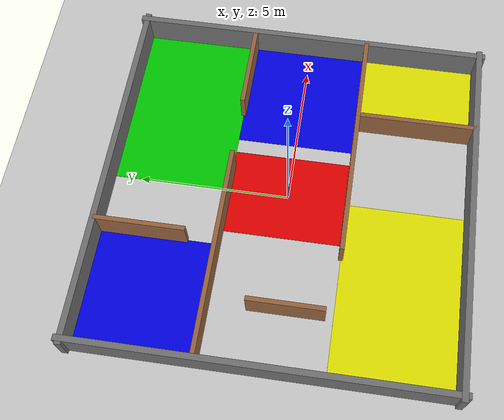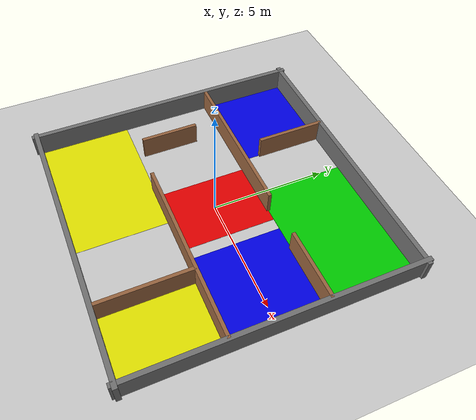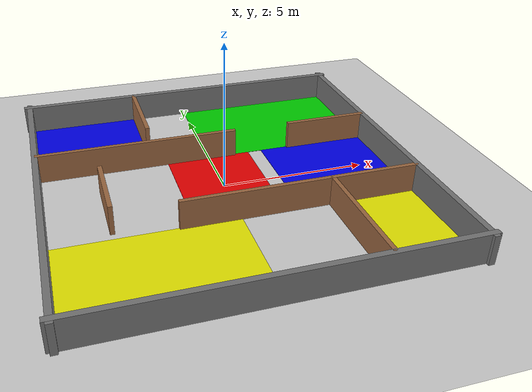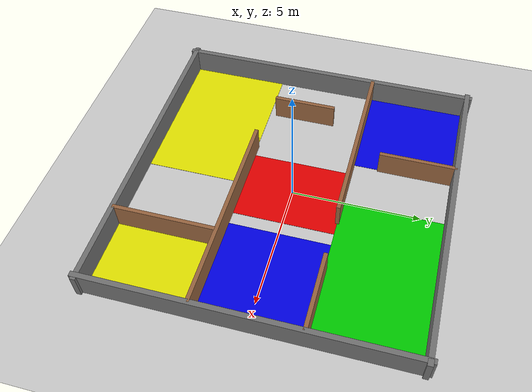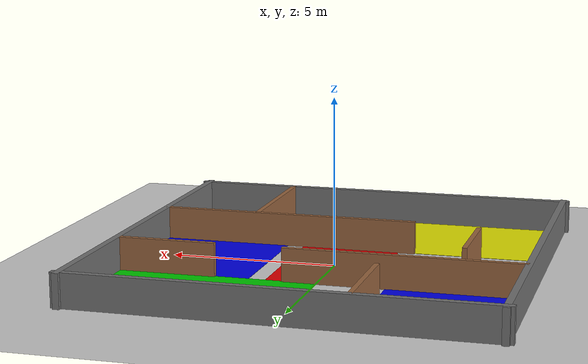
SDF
<?xml version="1.0"?>
<sdf version="1.8">
  <world name="default">
    <physics type="ode">
      <real_time_update_rate>1000.0</real_time_update_rate>
      <max_step_size>0.001</max_step_size>
      <real_time_factor>1</real_time_factor>
      <ode>
        <solver>
          <type>quick</type>
          <iters>150</iters>
          <precon_iters>0</precon_iters>
          <sor>1.4</sor>
          <use_dynamic_moi_rescaling>1</use_dynamic_moi_rescaling>
        </solver>
        <constraints>
          <cfm>0.00001</cfm>
          <erp>0.2</erp>
          <contact_max_correcting_vel>2000.0</contact_max_correcting_vel>
          <contact_surface_layer>0.01</contact_surface_layer>
        </constraints>
      </ode>
    </physics>
    <plugin filename="gz-sim-physics-system" name="gz::sim::systems::Physics"/>
    <plugin filename="gz-sim-user-commands-system" name="gz::sim::systems::UserCommands"/>
    <plugin filename="gz-sim-scene-broadcaster-system" name="gz::sim::systems::SceneBroadcaster"/>
    <plugin filename="gz-sim-sensors-system" name="gz::sim::systems::Sensors">
      <render_engine>ogre2</render_engine>
    </plugin>
    <plugin filename="gz-sim-imu-system" name="gz::sim::systems::Imu"/>

    <include>
      <uri>https://fuel.gazebosim.org/1.0/OpenRobotics/models/Ground Plane</uri>
    </include>
    <include>
      <uri>https://fuel.gazebosim.org/1.0/OpenRobotics/models/Sun</uri>
    </include>

    <!-- ==================== OUTER WALLS (12x12 arena) ==================== -->
    <model name="wall_north">
      <static>true</static>
      <pose>0 6 0.5 0 0 0</pose>
      <link name="link">
        <collision name="collision"><geometry><box><size>12.4 0.2 1.0</size></box></geometry></collision>
        <visual name="visual">
          <geometry><box><size>12.4 0.2 1.0</size></box></geometry>
          <material><ambient>0.45 0.45 0.45 1</ambient><diffuse>0.45 0.45 0.45 1</diffuse></material>
        </visual>
      </link>
    </model>

    <model name="wall_south">
      <static>true</static>
      <pose>0 -6 0.5 0 0 0</pose>
      <link name="link">
        <collision name="collision"><geometry><box><size>12.4 0.2 1.0</size></box></geometry></collision>
        <visual name="visual">
          <geometry><box><size>12.4 0.2 1.0</size></box></geometry>
          <material><ambient>0.45 0.45 0.45 1</ambient><diffuse>0.45 0.45 0.45 1</diffuse></material>
        </visual>
      </link>
    </model>

    <model name="wall_east">
      <static>true</static>
      <pose>6 0 0.5 0 0 0</pose>
      <link name="link">
        <collision name="collision"><geometry><box><size>0.2 12.4 1.0</size></box></geometry></collision>
        <visual name="visual">
          <geometry><box><size>0.2 12.4 1.0</size></box></geometry>
          <material><ambient>0.45 0.45 0.45 1</ambient><diffuse>0.45 0.45 0.45 1</diffuse></material>
        </visual>
      </link>
    </model>

    <model name="wall_west">
      <static>true</static>
      <pose>-6 0 0.5 0 0 0</pose>
      <link name="link">
        <collision name="collision"><geometry><box><size>0.2 12.4 1.0</size></box></geometry></collision>
        <visual name="visual">
          <geometry><box><size>0.2 12.4 1.0</size></box></geometry>
          <material><ambient>0.45 0.45 0.45 1</ambient><diffuse>0.45 0.45 0.45 1</diffuse></material>
        </visual>
      </link>
    </model>

    <!-- ==================== INTERIOR WALLS ==================== -->

    <!-- Horizontal wall splitting north half, with a doorway gap on the right -->
    <model name="wall_inner_h1_left">
      <static>true</static>
      <pose>-2.5 2 0.5 0 0 0</pose>
      <link name="link">
        <collision name="collision"><geometry><box><size>7 0.15 1.0</size></box></geometry></collision>
        <visual name="visual">
          <geometry><box><size>7 0.15 1.0</size></box></geometry>
          <material><ambient>0.6 0.4 0.25 1</ambient><diffuse>0.6 0.4 0.25 1</diffuse></material>
        </visual>
      </link>
    </model>

    <model name="wall_inner_h1_right">
      <static>true</static>
      <pose>4.5 2 0.5 0 0 0</pose>
      <link name="link">
        <collision name="collision"><geometry><box><size>3 0.15 1.0</size></box></geometry></collision>
        <visual name="visual">
          <geometry><box><size>3 0.15 1.0</size></box></geometry>
          <material><ambient>0.6 0.4 0.25 1</ambient><diffuse>0.6 0.4 0.25 1</diffuse></material>
        </visual>
      </link>
    </model>

    <!-- Vertical wall in the north-left area, with doorway gap at bottom -->
    <model name="wall_inner_v1_top">
      <static>true</static>
      <pose>-2 4.5 0.5 0 0 0</pose>
      <link name="link">
        <collision name="collision"><geometry><box><size>0.15 3 1.0</size></box></geometry></collision>
        <visual name="visual">
          <geometry><box><size>0.15 3 1.0</size></box></geometry>
          <material><ambient>0.6 0.4 0.25 1</ambient><diffuse>0.6 0.4 0.25 1</diffuse></material>
        </visual>
      </link>
    </model>

    <!-- Horizontal wall in the south half, with doorway gap on the left -->
    <model name="wall_inner_h2_right">
      <static>true</static>
      <pose>2 -2 0.5 0 0 0</pose>
      <link name="link">
        <collision name="collision"><geometry><box><size>8 0.15 1.0</size></box></geometry></collision>
        <visual name="visual">
          <geometry><box><size>8 0.15 1.0</size></box></geometry>
          <material><ambient>0.6 0.4 0.25 1</ambient><diffuse>0.6 0.4 0.25 1</diffuse></material>
        </visual>
      </link>
    </model>

    <!-- Short vertical wall creating a small alcove in the SE corner -->
    <model name="wall_inner_v2">
      <static>true</static>
      <pose>3 -4 0.5 0 0 0</pose>
      <link name="link">
        <collision name="collision"><geometry><box><size>0.15 4 1.0</size></box></geometry></collision>
        <visual name="visual">
          <geometry><box><size>0.15 4 1.0</size></box></geometry>
          <material><ambient>0.6 0.4 0.25 1</ambient><diffuse>0.6 0.4 0.25 1</diffuse></material>
        </visual>
      </link>
    </model>

    <!-- Small L-shaped obstacle near center-west -->
    <model name="wall_inner_stub_w">
      <static>true</static>
      <pose>-4 -0.5 0.5 0 0 0</pose>
      <link name="link">
        <collision name="collision"><geometry><box><size>0.15 2.5 1.0</size></box></geometry></collision>
        <visual name="visual">
          <geometry><box><size>0.15 2.5 1.0</size></box></geometry>
          <material><ambient>0.6 0.4 0.25 1</ambient><diffuse>0.6 0.4 0.25 1</diffuse></material>
        </visual>
      </link>
    </model>

    <!-- ==================== FLOOR ZONES ==================== -->

    <!-- YELLOW ZONE - large south-west area -->
    <model name="zone_yellow">
      <static>true</static>
      <pose>-3 -4 0.005 0 0 0</pose>
      <link name="link">
        <visual name="visual">
          <geometry><box><size>6 4 0.01</size></box></geometry>
          <material><ambient>0.9 0.9 0.0 1</ambient><diffuse>0.9 0.9 0.0 1</diffuse></material>
        </visual>
      </link>
    </model>

    <!-- RED ZONE - central corridor -->
    <model name="zone_red">
      <static>true</static>
      <pose>0 0 0.005 0 0 0</pose>
      <link name="link">
        <visual name="visual">
          <geometry><box><size>3 4 0.01</size></box></geometry>
          <material><ambient>0.9 0.0 0.0 1</ambient><diffuse>0.9 0.0 0.0 1</diffuse></material>
        </visual>
      </link>
    </model>

    <!-- BLUE ZONE - north-west room -->
    <model name="zone_blue">
      <static>true</static>
      <pose>-4 4 0.005 0 0 0</pose>
      <link name="link">
        <visual name="visual">
          <geometry><box><size>4 4 0.01</size></box></geometry>
          <material><ambient>0.0 0.0 0.9 1</ambient><diffuse>0.0 0.0 0.9 1</diffuse></material>
        </visual>
      </link>
    </model>

    <!-- GREEN ZONE - north-east room -->
    <model name="zone_green">
      <static>true</static>
      <pose>3 4 0.005 0 0 0</pose>
      <link name="link">
        <visual name="visual">
          <geometry><box><size>6 4 0.01</size></box></geometry>
          <material><ambient>0.0 0.8 0.0 1</ambient><diffuse>0.0 0.8 0.0 1</diffuse></material>
        </visual>
      </link>
    </model>

    <!-- YELLOW ZONE - south-east alcove -->
    <model name="zone_yellow_se">
      <static>true</static>
      <pose>4.5 -4 0.005 0 0 0</pose>
      <link name="link">
        <visual name="visual">
          <geometry><box><size>3 4 0.01</size></box></geometry>
          <material><ambient>0.9 0.9 0.0 1</ambient><diffuse>0.9 0.9 0.0 1</diffuse></material>
        </visual>
      </link>
    </model>

    <!-- BLUE ZONE - east mid-section -->
    <model name="zone_blue_e">
      <static>true</static>
      <pose>4 0 0.005 0 0 0</pose>
      <link name="link">
        <visual name="visual">
          <geometry><box><size>4 4 0.01</size></box></geometry>
          <material><ambient>0.0 0.0 0.9 1</ambient><diffuse>0.0 0.0 0.9 1</diffuse></material>
        </visual>
      </link>
    </model>

  </world>
</sdf>
